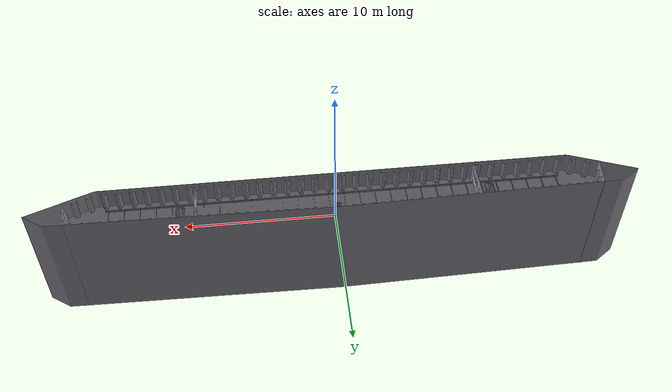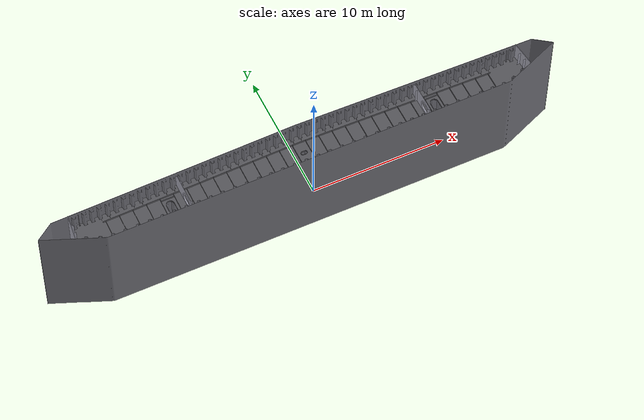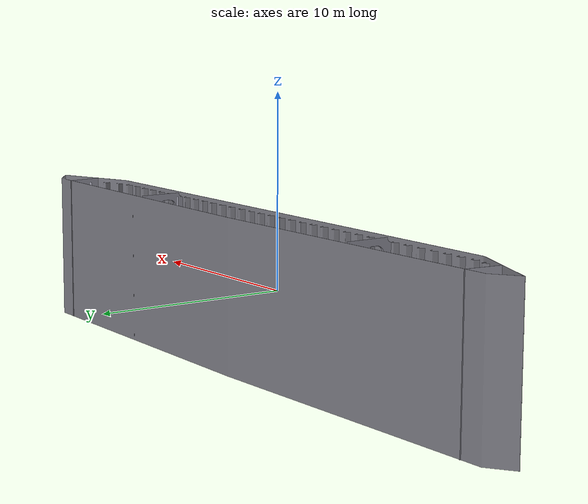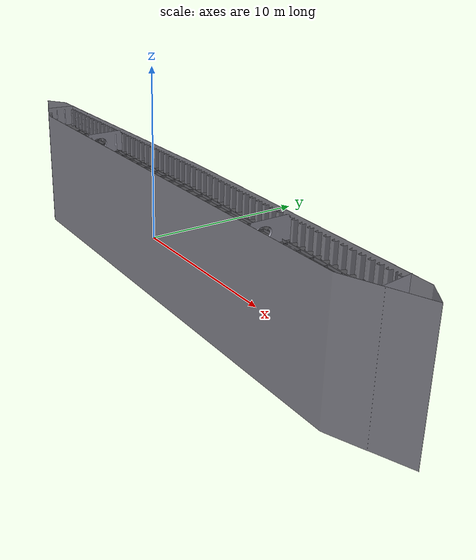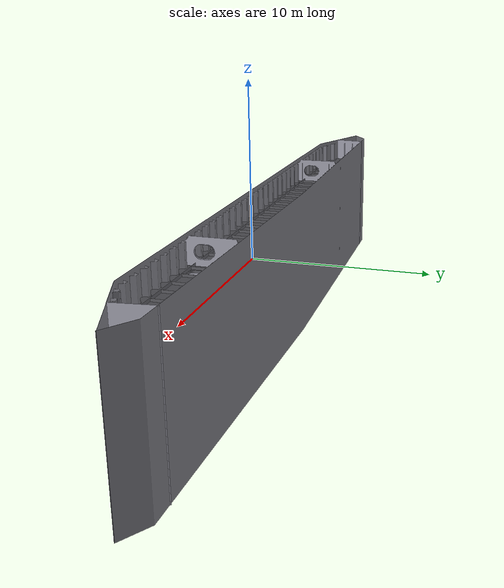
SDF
<?xml version="1.0"?>
<sdf version="1.6">
  <model name="bridge">
    <static>true</static>
    <link name="bridge_link">
      <visual name="bottom_plane_visual">
        <geometry>
          <mesh>
            <uri>model://bridge/meshes/bottom_plane.stl</uri>
            <scale>0.001 0.001 0.001</scale>
          </mesh>
        </geometry>
        <material>
          <ambient>0.43 0.43 0.46 1</ambient>
          <diffuse>0.43 0.43 0.46 1</diffuse>
          <specular>0.1 0.1 0.1 1</specular>
        </material>
      </visual>
      <collision name="bottom_plane_collision">
        <geometry>
          <mesh>
            <uri>model://bridge/meshes/bottom_plane.stl</uri>
            <scale>0.001 0.001 0.001</scale>
          </mesh>
        </geometry>
      </collision>
      <visual name="front_plane_01_visual">
        <geometry>
          <mesh>
            <uri>model://bridge/meshes/front_plane_01.stl</uri>
            <scale>0.001 0.001 0.001</scale>
          </mesh>
        </geometry>
        <material>
          <ambient>0.34 0.34 0.36 1</ambient>
          <diffuse>0.34 0.34 0.36 1</diffuse>
          <specular>0.1 0.1 0.1 1</specular>
        </material>
      </visual>
      <collision name="front_plane_01_collision">
        <geometry>
          <mesh>
            <uri>model://bridge/meshes/front_plane_01.stl</uri>
            <scale>0.001 0.001 0.001</scale>
          </mesh>
        </geometry>
      </collision>
      <visual name="front_plane_03_visual">
        <geometry>
          <mesh>
            <uri>model://bridge/meshes/front_plane_03.stl</uri>
            <scale>0.001 0.001 0.001</scale>
          </mesh>
        </geometry>
        <material>
          <ambient>0.34 0.34 0.36 1</ambient>
          <diffuse>0.34 0.34 0.36 1</diffuse>
          <specular>0.1 0.1 0.1 1</specular>
        </material>
      </visual>
      <collision name="front_plane_03_collision">
        <geometry>
          <mesh>
            <uri>model://bridge/meshes/front_plane_03.stl</uri>
            <scale>0.001 0.001 0.001</scale>
          </mesh>
        </geometry>
      </collision>
      <visual name="side_inner_left_01_visual">
        <geometry>
          <mesh>
            <uri>model://bridge/meshes/side_inner_left_01.stl</uri>
            <scale>0.001 0.001 0.001</scale>
          </mesh>
        </geometry>
        <material>
          <ambient>0.6 0.6 0.65 1</ambient>
          <diffuse>0.6 0.6 0.65 1</diffuse>
          <specular>0.1 0.1 0.1 1</specular>
        </material>
      </visual>
      <collision name="side_inner_left_01_collision">
        <geometry>
          <mesh>
            <uri>model://bridge/meshes/side_inner_left_01.stl</uri>
            <scale>0.001 0.001 0.001</scale>
          </mesh>
        </geometry>
      </collision>
      <visual name="side_inner_left_02_visual">
        <geometry>
          <mesh>
            <uri>model://bridge/meshes/side_inner_left_02.stl</uri>
            <scale>0.001 0.001 0.001</scale>
          </mesh>
        </geometry>
        <material>
          <ambient>0.6 0.6 0.65 1</ambient>
          <diffuse>0.6 0.6 0.65 1</diffuse>
          <specular>0.1 0.1 0.1 1</specular>
        </material>
      </visual>
      <collision name="side_inner_left_02_collision">
        <geometry>
          <mesh>
            <uri>model://bridge/meshes/side_inner_left_02.stl</uri>
            <scale>0.001 0.001 0.001</scale>
          </mesh>
        </geometry>
      </collision>
      <visual name="side_inner_left_03_visual">
        <geometry>
          <mesh>
            <uri>model://bridge/meshes/side_inner_left_03.stl</uri>
            <scale>0.001 0.001 0.001</scale>
          </mesh>
        </geometry>
        <material>
          <ambient>0.6 0.6 0.65 1</ambient>
          <diffuse>0.6 0.6 0.65 1</diffuse>
          <specular>0.1 0.1 0.1 1</specular>
        </material>
      </visual>
      <collision name="side_inner_left_03_collision">
        <geometry>
          <mesh>
            <uri>model://bridge/meshes/side_inner_left_03.stl</uri>
            <scale>0.001 0.001 0.001</scale>
          </mesh>
        </geometry>
      </collision>
      <visual name="side_inner_left_04_visual">
        <geometry>
          <mesh>
            <uri>model://bridge/meshes/side_inner_left_04.stl</uri>
            <scale>0.001 0.001 0.001</scale>
          </mesh>
        </geometry>
        <material>
          <ambient>0.6 0.6 0.65 1</ambient>
          <diffuse>0.6 0.6 0.65 1</diffuse>
          <specular>0.1 0.1 0.1 1</specular>
        </material>
      </visual>
      <collision name="side_inner_left_04_collision">
        <geometry>
          <mesh>
            <uri>model://bridge/meshes/side_inner_left_04.stl</uri>
            <scale>0.001 0.001 0.001</scale>
          </mesh>
        </geometry>
      </collision>
      <visual name="side_inner_right_01_visual">
        <geometry>
          <mesh>
            <uri>model://bridge/meshes/side_inner_right_01.stl</uri>
            <scale>0.001 0.001 0.001</scale>
          </mesh>
        </geometry>
        <material>
          <ambient>0.6 0.6 0.65 1</ambient>
          <diffuse>0.6 0.6 0.65 1</diffuse>
          <specular>0.1 0.1 0.1 1</specular>
        </material>
      </visual>
      <collision name="side_inner_right_01_collision">
        <geometry>
          <mesh>
            <uri>model://bridge/meshes/side_inner_right_01.stl</uri>
            <scale>0.001 0.001 0.001</scale>
          </mesh>
        </geometry>
      </collision>
      <visual name="side_inner_right_02_visual">
        <geometry>
          <mesh>
            <uri>model://bridge/meshes/side_inner_right_02.stl</uri>
            <scale>0.001 0.001 0.001</scale>
          </mesh>
        </geometry>
        <material>
          <ambient>0.6 0.6 0.65 1</ambient>
          <diffuse>0.6 0.6 0.65 1</diffuse>
          <specular>0.1 0.1 0.1 1</specular>
        </material>
      </visual>
      <collision name="side_inner_right_02_collision">
        <geometry>
          <mesh>
            <uri>model://bridge/meshes/side_inner_right_02.stl</uri>
            <scale>0.001 0.001 0.001</scale>
          </mesh>
        </geometry>
      </collision>
      <visual name="side_inner_right_03_visual">
        <geometry>
          <mesh>
            <uri>model://bridge/meshes/side_inner_right_03.stl</uri>
            <scale>0.001 0.001 0.001</scale>
          </mesh>
        </geometry>
        <material>
          <ambient>0.6 0.6 0.65 1</ambient>
          <diffuse>0.6 0.6 0.65 1</diffuse>
          <specular>0.1 0.1 0.1 1</specular>
        </material>
      </visual>
      <collision name="side_inner_right_03_collision">
        <geometry>
          <mesh>
            <uri>model://bridge/meshes/side_inner_right_03.stl</uri>
            <scale>0.001 0.001 0.001</scale>
          </mesh>
        </geometry>
      </collision>
      <visual name="side_inner_right_04_visual">
        <geometry>
          <mesh>
            <uri>model://bridge/meshes/side_inner_right_04.stl</uri>
            <scale>0.001 0.001 0.001</scale>
          </mesh>
        </geometry>
        <material>
          <ambient>0.6 0.6 0.65 1</ambient>
          <diffuse>0.6 0.6 0.65 1</diffuse>
          <specular>0.1 0.1 0.1 1</specular>
        </material>
      </visual>
      <collision name="side_inner_right_04_collision">
        <geometry>
          <mesh>
            <uri>model://bridge/meshes/side_inner_right_04.stl</uri>
            <scale>0.001 0.001 0.001</scale>
          </mesh>
        </geometry>
      </collision>
      <visual name="side_outer_left_visual">
        <geometry>
          <mesh>
            <uri>model://bridge/meshes/side_outer_left.stl</uri>
            <scale>0.001 0.001 0.001</scale>
          </mesh>
        </geometry>
        <material>
          <ambient>0.6 0.6 0.65 1</ambient>
          <diffuse>0.6 0.6 0.65 1</diffuse>
          <specular>0.1 0.1 0.1 1</specular>
        </material>
      </visual>
      <collision name="side_outer_left_collision">
        <geometry>
          <mesh>
            <uri>model://bridge/meshes/side_outer_left.stl</uri>
            <scale>0.001 0.001 0.001</scale>
          </mesh>
        </geometry>
      </collision>
      <visual name="side_outer_right_visual">
        <geometry>
          <mesh>
            <uri>model://bridge/meshes/side_outer_right.stl</uri>
            <scale>0.001 0.001 0.001</scale>
          </mesh>
        </geometry>
        <material>
          <ambient>0.6 0.6 0.65 1</ambient>
          <diffuse>0.6 0.6 0.65 1</diffuse>
          <specular>0.1 0.1 0.1 1</specular>
        </material>
      </visual>
      <collision name="side_outer_right_collision">
        <geometry>
          <mesh>
            <uri>model://bridge/meshes/side_outer_right.stl</uri>
            <scale>0.001 0.001 0.001</scale>
          </mesh>
        </geometry>
      </collision>
      <visual name="top_plane_visual">
        <geometry>
          <mesh>
            <uri>model://bridge/meshes/top_plane.stl</uri>
            <scale>0.001 0.001 0.001</scale>
          </mesh>
        </geometry>
        <material>
          <ambient>0.43 0.43 0.46 1</ambient>
          <diffuse>0.43 0.43 0.46 1</diffuse>
          <specular>0.1 0.1 0.1 1</specular>
        </material>
      </visual>
      <collision name="top_plane_collision">
        <geometry>
          <mesh>
            <uri>model://bridge/meshes/top_plane.stl</uri>
            <scale>0.001 0.001 0.001</scale>
          </mesh>
        </geometry>
      </collision>
    </link>
  </model>
</sdf>
